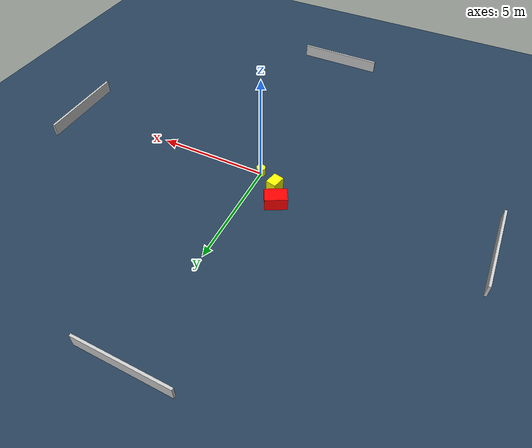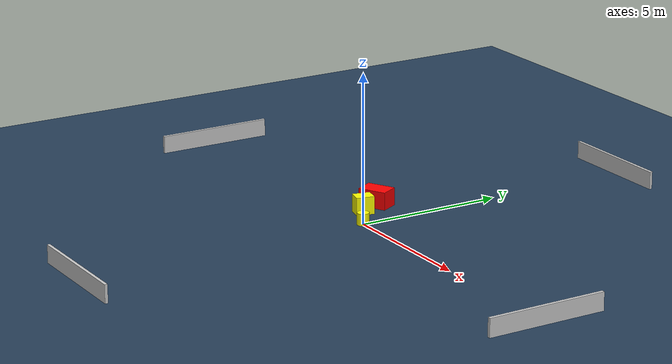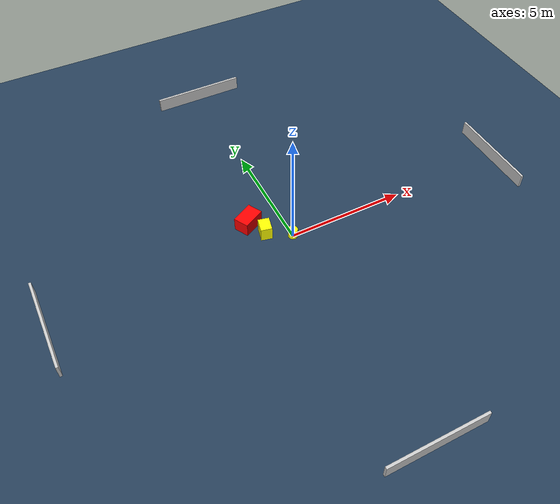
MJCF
<?xml version="1.0" ?>
<mujoco model="generated_environment">
  <option timestep="0.01" integrator="RK4" cone="elliptic"/>
  <default>
    <geom density="1"/>
  </default>
  <asset>
    <texture builtin="gradient" height="3072" name="skybox" rgb1="0.3 0.5 0.7" rgb2="0 0 0" type="skybox" width="512"/>
    <texture builtin="checker" height="300" name="groundplane" rgb1="0.2 0.3 0.4" rgb2="0.1 0.2 0.3" type="2d" width="300"/>
    <material name="groundplane" reflectance="0.2" texrepeat="5 5" texture="groundplane"/>
  </asset>
  <worldbody>
    <light dir="0 0 -1" directional="true" pos="0 0 1.5"/>
    <geom condim="3" friction="0.5 0.005 0.001" material="groundplane" name="floor" pos="0 0 0" size="0 0 0.05" type="plane"/>
    <body name="walls">
      <geom name="wall_1" condim="4" pos="-10.0 0.0 0.3" rgba="0.800000011920929 0.800000011920929 0.800000011920929 1.0" size="0.05 2.0 0.3" type="box"/>
      <geom name="wall_2" condim="4" pos="10.0 0.0 0.3" rgba="0.800000011920929 0.800000011920929 0.800000011920929 1.0" size="0.05 2.0 0.3" type="box"/>
      <geom name="wall_3" condim="4" pos="0.0 -10.0 0.3" rgba="0.800000011920929 0.800000011920929 0.800000011920929 1.0" size="2.0 0.05 0.3" type="box"/>
      <geom name="wall_4" condim="4" pos="0.0 10.0 0.3" rgba="0.800000011920929 0.800000011920929 0.800000011920929 1.0" size="2.0 0.05 0.3" type="box"/>
    </body>
    <body name="robot">
      <joint name="joint_x" type="slide" pos="0 0 0" axis="1 0 0"/>
      <joint name="joint_y" type="slide" pos="0 0 0" axis="0 1 0"/>
      <geom name="robot" type="cylinder" pos="0.0 0.0 0.2" size="0.2 0.2 0.0" mass="5.0" friction="1.0 0.005 0.0001" condim="4" rgba="1.0 1.0 0.0 1.0"/>
    </body>
    <body name="obstacle_1_movable">
      <geom name="obstacle_1_movable" condim="4" pos="-0.9565708695294476 0.5960856301189682 0.3" euler="0 0 167.1469128122427" friction="0.0 0.005 0.001" rgba="1.0 1.0 0.0 1.0" size="0.23498693904425988 0.3016985611009921 0.3" type="box" mass="0.1"/>
      <joint type="free"/>
    </body>
    <body name="obstacle_2_static">
      <geom name="obstacle_2_static" condim="4" pos="-1.357604281968107 1.3497044729882748 0.3" euler="0 0 208.24507593965592" friction="0.0 0.005 0.001" rgba="1.0 0.0 0.0 1.0" size="0.4835730141161481 0.3267516048310443 0.3" type="box"/>
    </body>
  </worldbody>
  <actuator>
    <motor name="actuator_x" joint="joint_x" gear="1" ctrlrange="-1 1"/>
    <motor name="actuator_y" joint="joint_y" gear="1" ctrlrange="-1 1"/>
  </actuator>
</mujoco>
